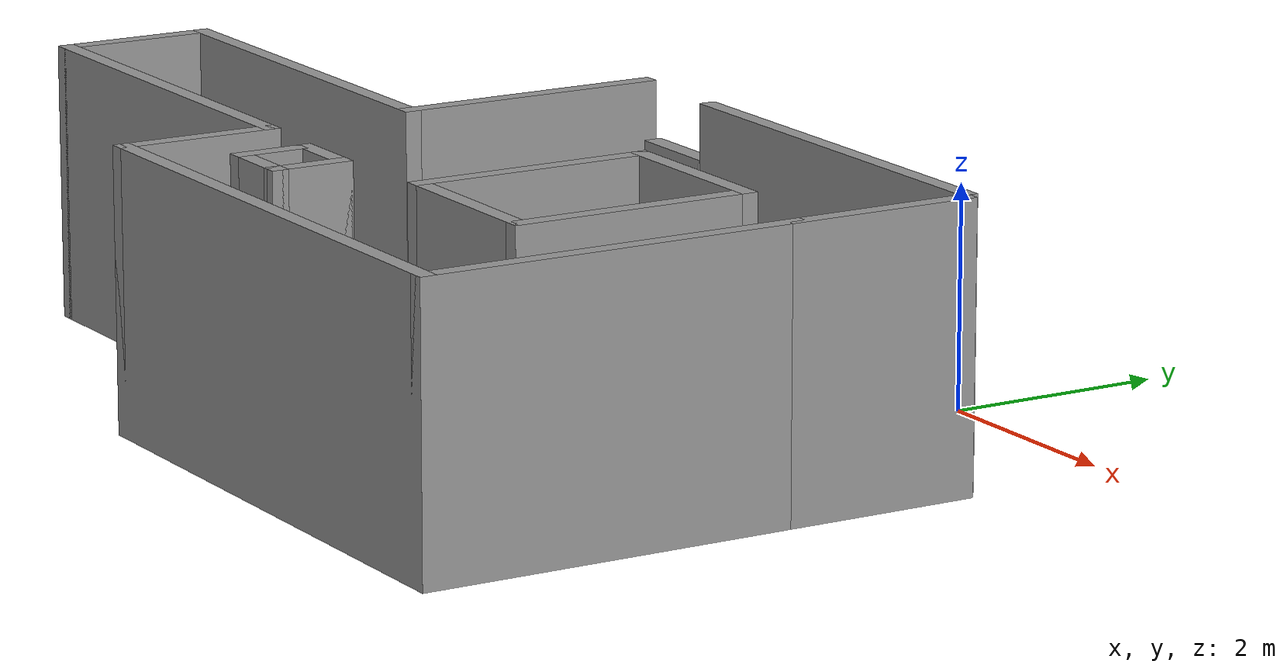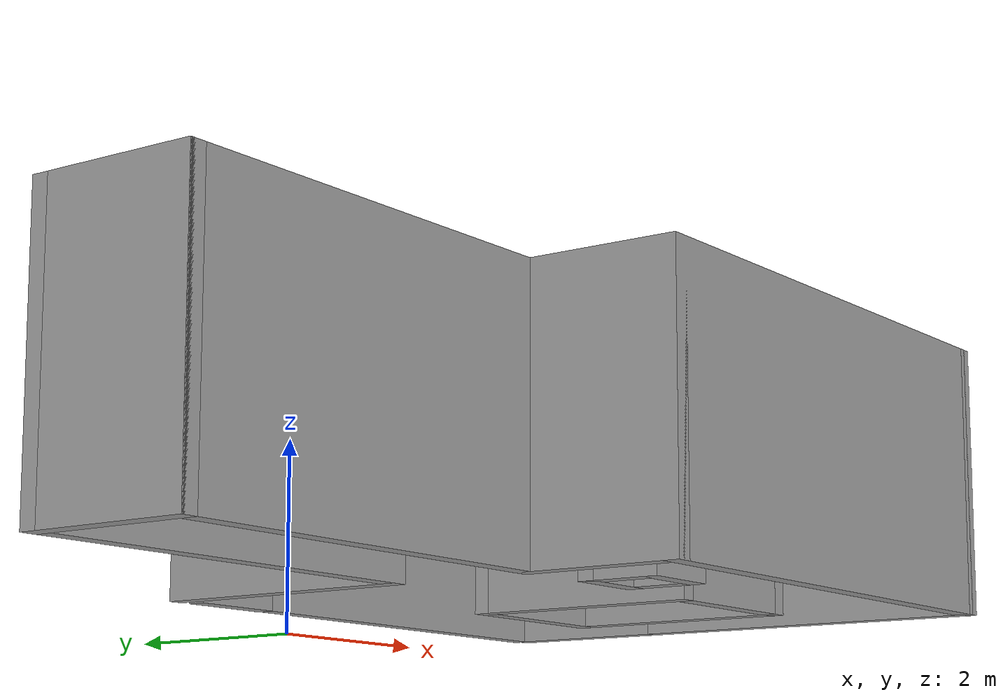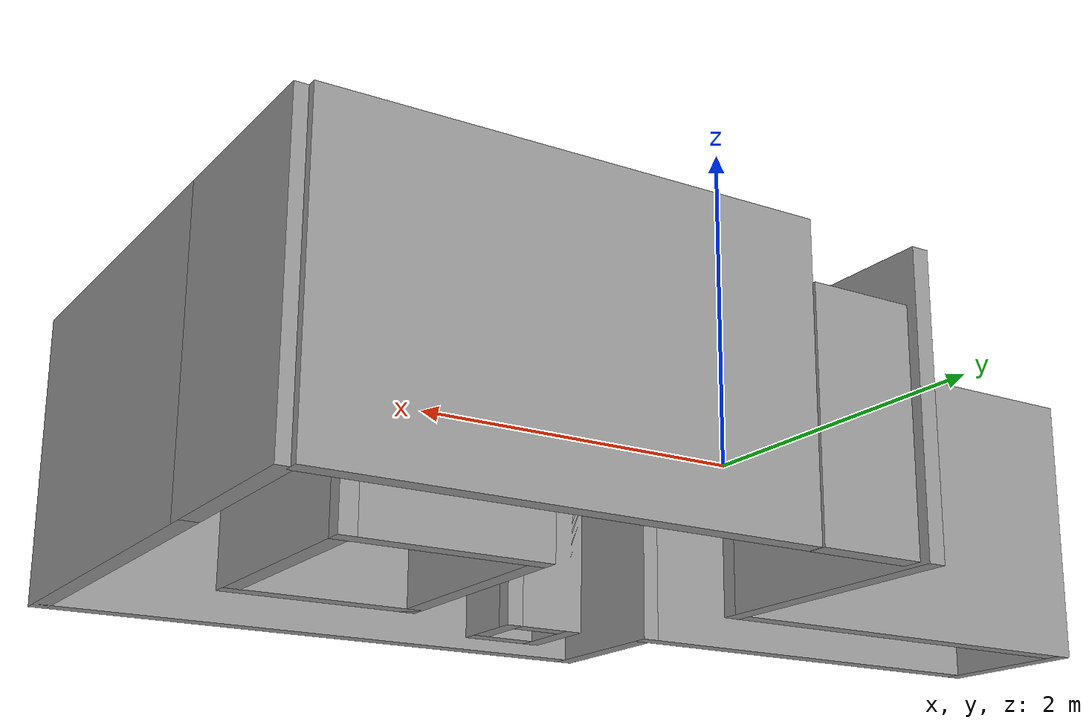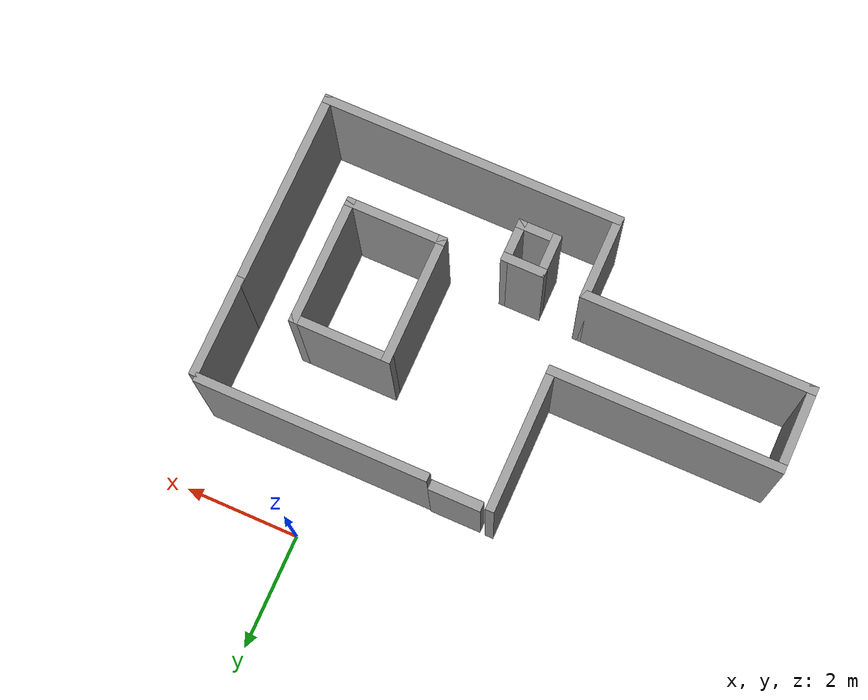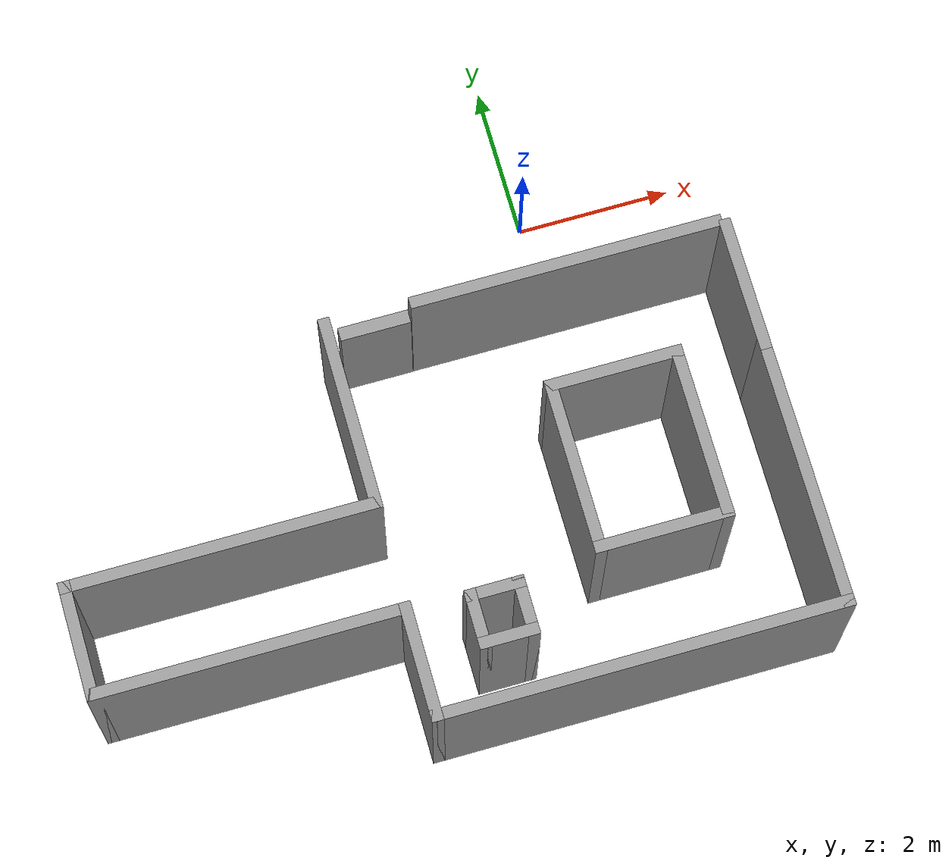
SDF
<?xml version='1.0'?>
<sdf version='1.7'>
  <model name='room.world'>
    <pose>-2.30042 -3.24246 0 0 -0 0</pose>
    <link name='Door_0'>
      <collision name='Door_0_Collision'>
        <geometry>
          <box>
            <size>0.9 0.17 2</size>
          </box>
        </geometry>
        <pose>0 0 1 0 -0 0</pose>
      </collision>
      <visual name='Door_0_Visual'>
        <pose>0 0 1 0 -0 0</pose>
        <geometry>
          <box>
            <size>0.9 0.17 2</size>
          </box>
        </geometry>
        <material>
          <script>
            <uri>file://media/materials/scripts/gazebo.material</uri>
            <name>Gazebo/Grey</name>
          </script>
        </material>
      </visual>
      <pose>-0.012848 1.86505 0 0 -0 0</pose>
    </link>
    <link name='Wall_1'>
      <collision name='Wall_1_Collision'>
        <geometry>
          <box>
            <size>4 0.15 2.5</size>
          </box>
        </geometry>
        <pose>0 0 1.25 0 -0 0</pose>
      </collision>
      <visual name='Wall_1_Visual'>
        <pose>0 0 1.25 0 -0 0</pose>
        <geometry>
          <box>
            <size>4 0.15 2.5</size>
          </box>
        </geometry>
        <material>
          <script>
            <uri>file://media/materials/scripts/gazebo.material</uri>
            <name>Gazebo/Grey</name>
          </script>
          <ambient>1 1 1 1</ambient>
        </material>
        <meta>
          <layer>0</layer>
        </meta>
      </visual>
      <pose>2.44537 1.8583 0 0 -0 0</pose>
    </link>
    <link name='Wall_10'>
      <collision name='Wall_10_Collision'>
        <geometry>
          <box>
            <size>3.5 0.15 2.5</size>
          </box>
        </geometry>
        <pose>0 0 1.25 0 -0 0</pose>
      </collision>
      <visual name='Wall_10_Visual'>
        <pose>0 0 1.25 0 -0 0</pose>
        <geometry>
          <box>
            <size>3.5 0.15 2.5</size>
          </box>
        </geometry>
        <material>
          <script>
            <uri>file://media/materials/scripts/gazebo.material</uri>
            <name>Gazebo/Grey</name>
          </script>
          <ambient>1 1 1 1</ambient>
        </material>
        <meta>
          <layer>0</layer>
        </meta>
      </visual>
      <pose>4.475 -1.49246 0 0 -0 1.5708</pose>
    </link>
    <link name='Wall_20'>
      <collision name='Wall_20_Collision'>
        <geometry>
          <box>
            <size>1.75 0.15 2.5</size>
          </box>
        </geometry>
        <pose>0 0 1.25 0 -0 0</pose>
      </collision>
      <visual name='Wall_20_Visual'>
        <pose>0 0 1.25 0 -0 0</pose>
        <geometry>
          <box>
            <size>1.75 0.15 2.5</size>
          </box>
        </geometry>
        <material>
          <script>
            <uri>file://media/materials/scripts/gazebo.material</uri>
            <name>Gazebo/Grey</name>
          </script>
          <ambient>1 1 1 1</ambient>
        </material>
        <meta>
          <layer>0</layer>
        </meta>
      </visual>
      <pose>4.475 0.982541 0 0 -0 1.5708</pose>
    </link>
    <link name='Wall_22'>
      <collision name='Wall_22_Collision'>
        <geometry>
          <box>
            <size>1.75 0.15 2.5</size>
          </box>
        </geometry>
        <pose>0 0 1.25 0 -0 0</pose>
      </collision>
      <visual name='Wall_22_Visual'>
        <pose>0 0 1.25 0 -0 0</pose>
        <geometry>
          <box>
            <size>1.75 0.15 2.5</size>
          </box>
        </geometry>
        <material>
          <script>
            <uri>file://media/materials/scripts/gazebo.material</uri>
            <name>Gazebo/Grey</name>
          </script>
          <ambient>1 1 1 1</ambient>
        </material>
        <meta>
          <layer>0</layer>
        </meta>
      </visual>
      <pose>2.6152 0.378396 0 0 -0 3.14159</pose>
    </link>
    <link name='Wall_23'>
      <collision name='Wall_23_Collision'>
        <geometry>
          <box>
            <size>2.25 0.15 2.5</size>
          </box>
        </geometry>
        <pose>0 0 1.25 0 -0 0</pose>
      </collision>
      <visual name='Wall_23_Visual'>
        <pose>0 0 1.25 0 -0 0</pose>
        <geometry>
          <box>
            <size>2.25 0.15 2.5</size>
          </box>
        </geometry>
        <material>
          <script>
            <uri>file://media/materials/scripts/gazebo.material</uri>
            <name>Gazebo/Grey</name>
          </script>
          <ambient>1 1 1 1</ambient>
        </material>
        <meta>
          <layer>0</layer>
        </meta>
      </visual>
      <pose>1.8152 -0.671604 0 0 -0 -1.5708</pose>
    </link>
    <link name='Wall_24'>
      <collision name='Wall_24_Collision'>
        <geometry>
          <box>
            <size>1.75 0.15 2.5</size>
          </box>
        </geometry>
        <pose>0 0 1.25 0 -0 0</pose>
      </collision>
      <visual name='Wall_24_Visual'>
        <pose>0 0 1.25 0 -0 0</pose>
        <geometry>
          <box>
            <size>1.75 0.15 2.5</size>
          </box>
        </geometry>
        <material>
          <script>
            <uri>file://media/materials/scripts/gazebo.material</uri>
            <name>Gazebo/Grey</name>
          </script>
          <ambient>1 1 1 1</ambient>
        </material>
        <meta>
          <layer>0</layer>
        </meta>
      </visual>
      <pose>2.6152 -1.7216 0 0 -0 0</pose>
    </link>
    <link name='Wall_25'>
      <collision name='Wall_25_Collision'>
        <geometry>
          <box>
            <size>2.25 0.15 2.5</size>
          </box>
        </geometry>
        <pose>0 0 1.25 0 -0 0</pose>
      </collision>
      <visual name='Wall_25_Visual'>
        <pose>0 0 1.25 0 -0 0</pose>
        <geometry>
          <box>
            <size>2.25 0.15 2.5</size>
          </box>
        </geometry>
        <material>
          <script>
            <uri>file://media/materials/scripts/gazebo.material</uri>
            <name>Gazebo/Grey</name>
          </script>
          <ambient>1 1 1 1</ambient>
        </material>
        <meta>
          <layer>0</layer>
        </meta>
      </visual>
      <pose>3.4152 -0.671604 0 0 -0 1.5708</pose>
    </link>
    <link name='Wall_27'>
      <collision name='Wall_27_Collision'>
        <geometry>
          <box>
            <size>0.75 0.15 2.5</size>
          </box>
        </geometry>
        <pose>0 0 1.25 0 -0 0</pose>
      </collision>
      <visual name='Wall_27_Visual'>
        <pose>0 0 1.25 0 -0 0</pose>
        <geometry>
          <box>
            <size>0.75 0.15 2.5</size>
          </box>
        </geometry>
        <material>
          <script>
            <uri>file://media/materials/scripts/gazebo.material</uri>
            <name>Gazebo/Grey</name>
          </script>
          <ambient>1 1 1 1</ambient>
        </material>
        <meta>
          <layer>0</layer>
        </meta>
      </visual>
      <pose>0.162053 -2.17782 0 0 -0 -1.5708</pose>
    </link>
    <link name='Wall_28'>
      <collision name='Wall_28_Collision'>
        <geometry>
          <box>
            <size>0.75 0.15 2.5</size>
          </box>
        </geometry>
        <pose>0 0 1.25 0 -0 0</pose>
      </collision>
      <visual name='Wall_28_Visual'>
        <pose>0 0 1.25 0 -0 0</pose>
        <geometry>
          <box>
            <size>0.75 0.15 2.5</size>
          </box>
        </geometry>
        <material>
          <script>
            <uri>file://media/materials/scripts/gazebo.material</uri>
            <name>Gazebo/Grey</name>
          </script>
          <ambient>1 1 1 1</ambient>
        </material>
        <meta>
          <layer>0</layer>
        </meta>
      </visual>
      <pose>0.462053 -2.47782 0 0 -0 0</pose>
    </link>
    <link name='Wall_29'>
      <collision name='Wall_29_Collision'>
        <geometry>
          <box>
            <size>0.75 0.15 2.5</size>
          </box>
        </geometry>
        <pose>0 0 1.25 0 -0 0</pose>
      </collision>
      <visual name='Wall_29_Visual'>
        <pose>0 0 1.25 0 -0 0</pose>
        <geometry>
          <box>
            <size>0.75 0.15 2.5</size>
          </box>
        </geometry>
        <material>
          <script>
            <uri>file://media/materials/scripts/gazebo.material</uri>
            <name>Gazebo/Grey</name>
          </script>
          <ambient>1 1 1 1</ambient>
        </material>
        <meta>
          <layer>0</layer>
        </meta>
      </visual>
      <pose>0.762053 -2.17782 0 0 -0 1.5708</pose>
    </link>
    <link name='Wall_3'>
      <collision name='Wall_3_Collision'>
        <geometry>
          <box>
            <size>2.5 0.15 2.5</size>
          </box>
        </geometry>
        <pose>0 0 1.25 0 -0 0</pose>
      </collision>
      <visual name='Wall_3_Visual'>
        <pose>0 0 1.25 0 -0 0</pose>
        <geometry>
          <box>
            <size>2.5 0.15 2.5</size>
          </box>
        </geometry>
        <material>
          <script>
            <uri>file://media/materials/scripts/gazebo.material</uri>
            <name>Gazebo/Grey</name>
          </script>
          <ambient>1 1 1 1</ambient>
        </material>
        <meta>
          <layer>0</layer>
        </meta>
      </visual>
      <pose>-0.625 0.707541 0 0 -0 -1.5708</pose>
    </link>
    <link name='Wall_30'>
      <collision name='Wall_30_Collision'>
        <geometry>
          <box>
            <size>0.75 0.15 2.5</size>
          </box>
        </geometry>
        <pose>0 0 1.25 0 -0 0</pose>
      </collision>
      <visual name='Wall_30_Visual'>
        <pose>0 0 1.25 0 -0 0</pose>
        <geometry>
          <box>
            <size>0.75 0.15 2.5</size>
          </box>
        </geometry>
        <material>
          <script>
            <uri>file://media/materials/scripts/gazebo.material</uri>
            <name>Gazebo/Grey</name>
          </script>
          <ambient>1 1 1 1</ambient>
        </material>
        <meta>
          <layer>0</layer>
        </meta>
      </visual>
      <pose>0.462053 -1.87782 0 0 -0 3.14159</pose>
    </link>
    <link name='Wall_4'>
      <collision name='Wall_4_Collision'>
        <geometry>
          <box>
            <size>4 0.15 2.5</size>
          </box>
        </geometry>
        <pose>0 0 1.25 0 -0 0</pose>
      </collision>
      <visual name='Wall_4_Visual'>
        <pose>0 0 1.25 0 -0 0</pose>
        <geometry>
          <box>
            <size>4 0.15 2.5</size>
          </box>
        </geometry>
        <material>
          <script>
            <uri>file://media/materials/scripts/gazebo.material</uri>
            <name>Gazebo/Grey</name>
          </script>
          <ambient>1 1 1 1</ambient>
        </material>
        <meta>
          <layer>0</layer>
        </meta>
      </visual>
      <pose>-2.55 -0.467458 0 0 -0 3.14159</pose>
    </link>
    <link name='Wall_5'>
      <collision name='Wall_5_Collision'>
        <geometry>
          <box>
            <size>1.5 0.15 2.5</size>
          </box>
        </geometry>
        <pose>0 0 1.25 0 -0 0</pose>
      </collision>
      <visual name='Wall_5_Visual'>
        <pose>0 0 1.25 0 -0 0</pose>
        <geometry>
          <box>
            <size>1.5 0.15 2.5</size>
          </box>
        </geometry>
        <material>
          <script>
            <uri>file://media/materials/scripts/gazebo.material</uri>
            <name>Gazebo/Grey</name>
          </script>
          <ambient>1 1 1 1</ambient>
        </material>
        <meta>
          <layer>0</layer>
        </meta>
      </visual>
      <pose>-4.475 -1.14246 0 0 -0 -1.5708</pose>
    </link>
    <link name='Wall_6'>
      <collision name='Wall_6_Collision'>
        <geometry>
          <box>
            <size>4 0.15 2.5</size>
          </box>
        </geometry>
        <pose>0 0 1.25 0 -0 0</pose>
      </collision>
      <visual name='Wall_6_Visual'>
        <pose>0 0 1.25 0 -0 0</pose>
        <geometry>
          <box>
            <size>4 0.15 2.5</size>
          </box>
        </geometry>
        <material>
          <script>
            <uri>file://media/materials/scripts/gazebo.material</uri>
            <name>Gazebo/Grey</name>
          </script>
          <ambient>1 1 1 1</ambient>
        </material>
        <meta>
          <layer>0</layer>
        </meta>
      </visual>
      <pose>-2.55 -1.81746 0 0 -0 0</pose>
    </link>
    <link name='Wall_8'>
      <collision name='Wall_8_Collision'>
        <geometry>
          <box>
            <size>1.5 0.15 2.5</size>
          </box>
        </geometry>
        <pose>0 0 1.25 0 -0 0</pose>
      </collision>
      <visual name='Wall_8_Visual'>
        <pose>0 0 1.25 0 -0 0</pose>
        <geometry>
          <box>
            <size>1.5 0.15 2.5</size>
          </box>
        </geometry>
        <material>
          <script>
            <uri>file://media/materials/scripts/gazebo.material</uri>
            <name>Gazebo/Grey</name>
          </script>
          <ambient>1 1 1 1</ambient>
        </material>
        <meta>
          <layer>0</layer>
        </meta>
      </visual>
      <pose>-0.625 -2.49246 0 0 -0 -1.5708</pose>
    </link>
    <link name='Wall_9'>
      <collision name='Wall_9_Collision'>
        <geometry>
          <box>
            <size>5.25 0.15 2.5</size>
          </box>
        </geometry>
        <pose>0 0 1.25 0 -0 0</pose>
      </collision>
      <visual name='Wall_9_Visual'>
        <pose>0 0 1.25 0 -0 0</pose>
        <geometry>
          <box>
            <size>5.25 0.15 2.5</size>
          </box>
        </geometry>
        <material>
          <script>
            <uri>file://media/materials/scripts/gazebo.material</uri>
            <name>Gazebo/Grey</name>
          </script>
          <ambient>1 1 1 1</ambient>
        </material>
        <meta>
          <layer>0</layer>
        </meta>
      </visual>
      <pose>1.925 -3.16746 0 0 -0 0</pose>
    </link>
    <static>1</static>
  </model>
</sdf>
